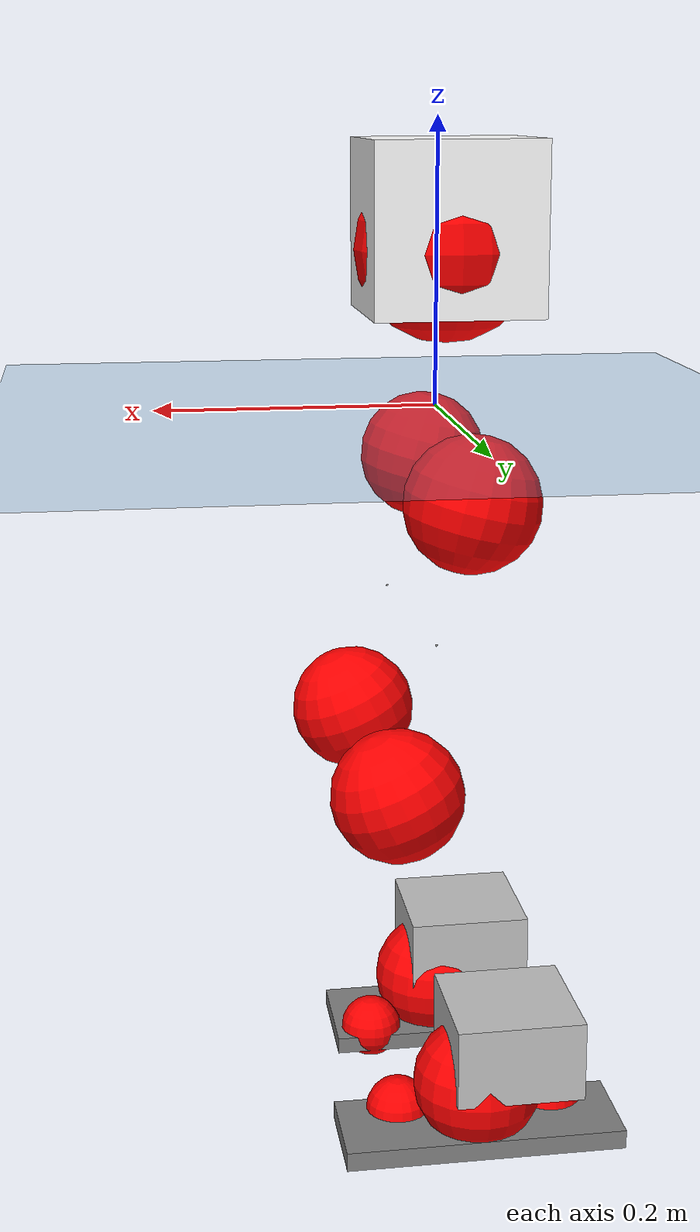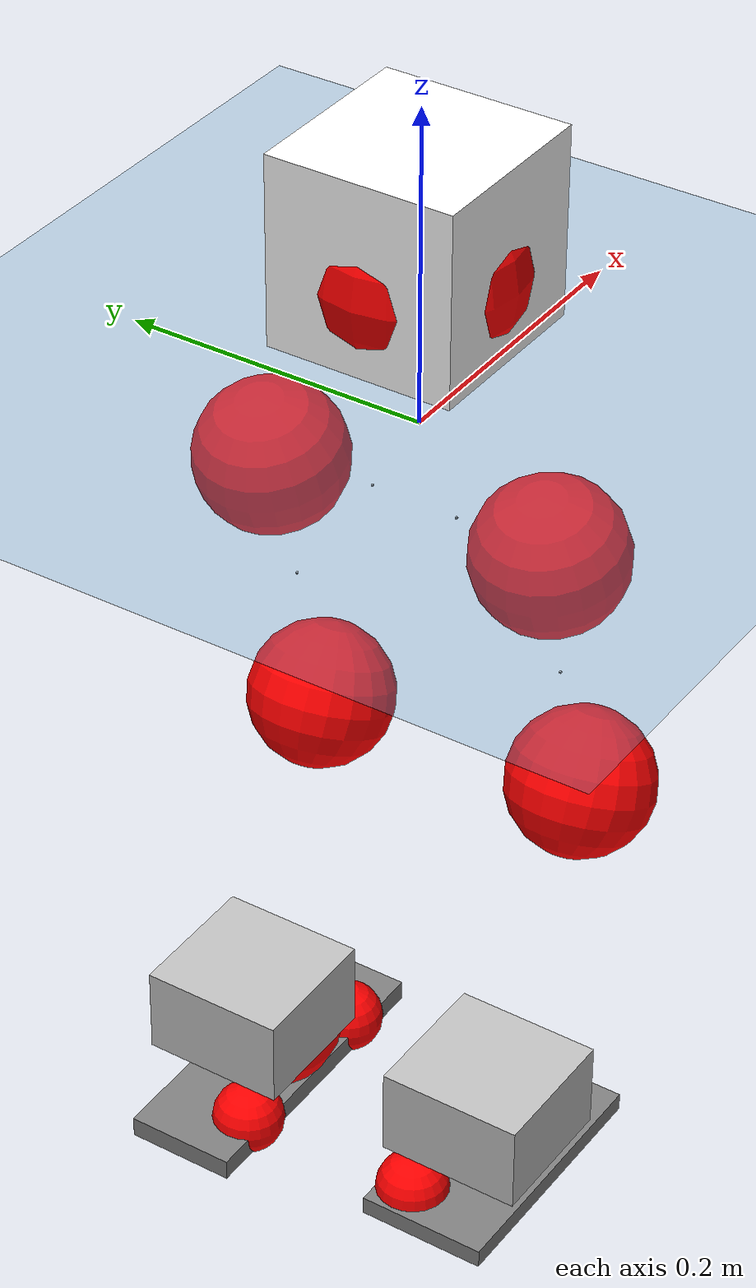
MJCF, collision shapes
<mujoco model="pi_12dof_release_v1">
  <compiler angle="radian" assetdir="assets" balanceinertia="true" inertiafromgeom="false"/>

  <option timestep="0.005" density="1.2" viscosity="2e-05"/>

  <size nkey="1"/>

  <visual>
    <quality shadowsize="8192"/>
    <map shadowclip="0.5"/>
  </visual>

  <default>
    <default class="/">
      <joint armature="0.01" damping="0.01" frictionloss="0.01"/>
      <geom contype="0" conaffinity="0" group="1" solref="-1000 -80"/>
      <site size="0.01 0.005 0.005" group="5"/>
      <general forcelimited="true" biastype="affine" gainprm="20" biasprm="0 -20 -0.5"/>
      <default class="foot">
        <geom size="0.0845 0.036 0.005" type="box" condim="6" group="4" priority="1" friction="0.9 0.2 0.2" solimp="0.015 1 0.005"/>
      </default>
      <default class="reward_collision_sphere">
        <geom group="5" rgba="1 0 0 1"/>
      </default>
    </default>
  </default>

  <asset>
    <texture type="skybox" colorspace="auto" name="//unnamed_texture_0" builtin="gradient" rgb1="0.95 0.95 0.95" rgb2="0.95 0.95 0.95" width="100" height="600"/>
    <texture type="2d" colorspace="auto" name="texplane" builtin="checker" rgb1="0.345 0.575 0.748" rgb2="0.345 0.575 0.748" markrgb="1 1 1" width="512" height="512"/>
    <material name="MatPlane" class="/" texture="texplane" texuniform="true" texrepeat="2 2" specular="0.9"/>
    <mesh name="baselink_1" class="/" file="baselink_1.STL"/>
    <mesh name="r_hip_pitch_link" class="/" file="r_hip_pitch_link.STL"/>
    <mesh name="r_hip_roll_link" class="/" file="r_hip_roll_link.STL"/>
    <mesh name="r_thigh_link" class="/" file="r_thigh_link.STL"/>
    <mesh name="r_calf_link" class="/" file="r_calf_link.STL"/>
    <mesh name="r_ankle_pitch_link" class="/" file="r_ankle_pitch_link.STL"/>
    <mesh name="r_ankle_roll_link" class="/" file="r_ankle_roll_link.STL"/>
    <mesh name="l_hip_pitch_link" class="/" file="l_hip_pitch_link.STL"/>
    <mesh name="l_hip_roll_link" class="/" file="l_hip_roll_link.STL"/>
    <mesh name="l_thigh_link" class="/" file="l_thigh_link.STL"/>
    <mesh name="l_calf_link" class="/" file="l_calf_link.STL"/>
    <mesh name="l_ankle_pitch_link" class="/" file="l_ankle_pitch_link.STL"/>
    <mesh name="l_ankle_roll_link" class="/" file="l_ankle_roll_link.STL"/>
  </asset>

  <worldbody>
    <geom name="floor" class="/" size="100 100 0.125" type="plane" group="0" material="MatPlane"/>
    <light name="toplight_shadow" class="/" pos="0 0 5" dir="0.0990148 0.0990148 -0.990148" type="directional" ambient="0.04 0.04 0.04" diffuse="0.55 0.55 0.55" specular="0.12 0.12 0.12"/>
    <light name="toplight_fill" class="/" pos="0 0 5" dir="0.0990148 0.0990148 -0.990148" type="directional" castshadow="false" ambient="0.04 0.04 0.04" diffuse="0.3 0.3 0.3" specular="0.08 0.08 0.08"/>
    <body name="trunk" pos="-0.00788365 -0.00200938 0.000769806" quat="0.999995 0.00215327 0.0022023 0.00101133">
      <inertial pos="0.00928539 -0.000781281 0.0607065" quat="0.700731 0.00537019 0.00364451 0.713396" mass="4.03296" diaginertia="0.00452975 0.0193773 0.0378284"/>
      <joint name="//unnamed_joint_0" type="free"/>
      <geom name="//unnamed_geom_1" class="/" type="mesh" density="0" rgba="1 1 1 1" mesh="baselink_1"/>
      <geom name="//unnamed_geom_2" class="/" size="0.0596294 0.0596294 0.0596294" pos="0 0 0.124298" type="box" rgba="1 1 1 1"/>
      <geom name="//unnamed_geom_3" class="reward_collision_sphere" size="0.0655923" pos="0 0 0.10876"/>
      <site name="imu" class="/" pos="-0.0105817 -0.0078018 -0.0302891" size="0.0119259"/>
      <camera name="track" class="/" pos="0 -2.33253 0" quat="0.707107 0.707107 0 0" mode="trackcom"/>
      <camera name="ego_camera" class="/" pos="0.0643332 0 0.279669" quat="-0.5 -0.5 0.5 0.5"/>
      <body name="r_hip_pitch_link" pos="0.00150111 -0.0278461 -0.0512315" quat="0.992198 -0.000357076 -0.124675 -1.0965e-05">
        <inertial pos="0.0028226 -0.0609535 -0.00165408" quat="-0.0130007 0.700507 -0.023419 0.713143" mass="0.647983" diaginertia="4.64145e-05 0.00021298 0.000750442"/>
        <joint name="r_hip_pitch_joint" class="/" pos="0 0 0" axis="-0.00330428 -0.99999 -0.00291842" range="-1.72761 1.2893" armature="0.0114158" damping="0" frictionloss="0.00969085"/>
        <geom name="//unnamed_geom_4" class="/" type="mesh" density="0" rgba="0.75294 0.75294 0.75294 1" mesh="r_hip_pitch_link"/>
        <geom name="//unnamed_geom_5" class="/" size="0.000596294 0.000596294 0.000596294" type="box" rgba="0.75294 0.75294 0.75294 1"/>
        <body name="r_hip_roll_link" pos="-0.000842937 -0.0627157 -0.00170499" quat="0.999997 -0.00016116 0.00235118 -0.00114028">
          <inertial pos="-0.00483454 0.0029143 -0.0882594" quat="0.705503 -0.0805758 -0.0819477 0.699327" mass="0.672687" diaginertia="0.000160245 0.000643408 0.00108975"/>
          <joint name="r_hip_roll_joint" class="/" pos="0 0 0" axis="-0.999824 0.0157595 -0.0101713" stiffness="0.0134521" range="-0.144832 0.567038" armature="0.0118656" damping="0.0374236" frictionloss="0.00899045"/>
          <geom name="//unnamed_geom_6" class="/" type="mesh" density="0" rgba="0.75294 0.75294 0.75294 1" mesh="r_hip_roll_link"/>
          <geom name="//unnamed_geom_7" class="/" size="0.000596294 0.000596294 0.000596294" type="box" rgba="0.75294 0.75294 0.75294 1"/>
          <geom name="//unnamed_geom_8" class="reward_collision_sphere" size="0.0477035"/>
          <body name="r_thigh_link" pos="0.00281889 0.00652438 -0.105892" quat="0.999999 -0.000127823 0.000958952 -0.000712">
            <inertial pos="0.00478923 0.00129521 -0.0768147" quat="0.73728 0.675587 0.000120888 -0.000634276" mass="0.188671" diaginertia="5.3392e-05 0.000177261 0.000476833"/>
            <joint name="r_thigh_joint" class="/" pos="0 0 0" axis="0.000245475 0.000669424 -1" stiffness="0.00885275" range="-0.213337 0.550789" armature="0.0129801" damping="0.012659" frictionloss="0.0166726"/>
            <geom name="//unnamed_geom_9" class="/" type="mesh" density="0" rgba="0.75294 0.75294 0.75294 1" mesh="r_thigh_link"/>
            <geom name="//unnamed_geom_10" class="/" size="0.000596294 0.000596294 0.000596294" type="box" rgba="0.75294 0.75294 0.75294 1"/>
            <body name="r_calf_link" pos="0.00290479 -0.00168963 -0.102486" quat="0.947833 -0.00148072 0.31876 0.00134732">
              <inertial pos="-0.00167301 0.00433785 -0.108688" quat="0.999792 0.0140636 0.0120222 -0.00862852" mass="1.40146" diaginertia="0.00175172 0.00773194 0.00166855"/>
              <joint name="r_calf_joint" class="/" pos="0 0 0" axis="0.0135118 -0.999642 -0.0231083" stiffness="0.0260557" range="-1.79801 0.605259" armature="0.0107206" damping="0.0183893" frictionloss="0.0095483"/>
              <geom name="//unnamed_geom_11" class="/" type="mesh" density="0" rgba="0.75294 0.75294 0.75294 1" mesh="r_calf_link"/>
              <geom name="//unnamed_geom_12" class="/" size="0.000596294 0.000596294 0.000596294" type="box" rgba="0.75294 0.75294 0.75294 1"/>
              <geom name="//unnamed_geom_13" class="reward_collision_sphere" size="0.0477035"/>
              <body name="r_ankle_pitch_link" pos="-0.00120777 0.00785546 -0.216494" quat="0.98005 0.000148263 -0.198748 -0.00078879">
                <inertial pos="0.00232112 0.00808739 -0.00241973" quat="0.00429251 0.716569 -0.00221695 0.697499" mass="0.292729" diaginertia="0.000140563 0.000478991 0.00102939"/>
                <joint name="r_ankle_pitch_joint" class="/" pos="0 0 0" axis="0.0327279 -0.999446 -0.00599354" range="-1.30957 0.514109" armature="0.0130019" damping="0.0215281" frictionloss="0.0108487"/>
                <geom name="//unnamed_geom_14" class="/" type="mesh" density="0" rgba="0.75294 0.75294 0.75294 1" mesh="r_ankle_pitch_link"/>
                <geom name="//unnamed_geom_15" class="/" size="0.0465109 0.0477035 0.0298147" type="box" rgba="0.75294 0.75294 0.75294 1"/>
                <body name="r_ankle_roll_link" pos="0.0659344 0.0079414 3.1669e-05" quat="1 -6.04493e-05 -6.83667e-05 7.68858e-05">
                  <inertial pos="-0.0201658 0.00237887 -0.0221858" quat="0.550615 0.456975 0.428871 0.551422" mass="0.860399" diaginertia="0.000528548 0.0022266 0.00267379"/>
                  <joint name="r_ankle_roll_joint" class="/" pos="0 0 0" axis="-0.999347 0.0354977 0.00675928" range="-0.0243006 0.195669" armature="0.00829877" damping="0" frictionloss="0.0118701"/>
                  <geom name="//unnamed_geom_16" class="/" type="mesh" density="0" rgba="0.75294 0.75294 0.75294 1" mesh="r_ankle_roll_link"/>
                  <geom name="//unnamed_geom_17" class="/" type="mesh" rgba="0.75294 0.75294 0.75294 1" mesh="r_ankle_roll_link"/>
                  <geom name="right_foot" class="foot" size="0.0857579 0.0428898 0.00626893" pos="-0.0437466 0 -0.0683636"/>
                  <geom name="//unnamed_geom_19" class="reward_collision_sphere" size="0.0477035" pos="-0.0428888 0 -0.0310744"/>
                  <geom name="//unnamed_geom_20" class="reward_collision_sphere" size="0.0238517" pos="0.0128666 0.0233253 -0.0621488"/>
                  <geom name="//unnamed_geom_21" class="reward_collision_sphere" size="0.0238517" pos="-0.102933 0.0233253 -0.0621488"/>
                  <site name="right_foot" class="foot" pos="-0.0437466 0 -0.0683636" size="0.0119259"/>
                </body>
              </body>
            </body>
          </body>
        </body>
      </body>
      <body name="l_hip_pitch_link" pos="-0.00203566 0.0272197 -0.0474581" quat="0.992207 0.000413726 -0.124601 -0.000614229">
        <inertial pos="0.000982735 0.0564267 0.00336165" quat="-0.0446104 0.723588 0.0596533 0.686201" mass="0.619458" diaginertia="6.2646e-05 0.000228845 0.000861502"/>
        <joint name="l_hip_pitch_joint" class="/" pos="0 0 0" axis="0.0328078 0.999255 -0.0203072" range="-1.23408 1.73873" armature="0.0121556" damping="0.00587394" frictionloss="0.0115156"/>
        <geom name="//unnamed_geom_22" class="/" type="mesh" density="0" rgba="0.75294 0.75294 0.75294 1" mesh="l_hip_pitch_link"/>
        <geom name="//unnamed_geom_23" class="/" size="0.000596294 0.000596294 0.000596294" type="box" rgba="0.75294 0.75294 0.75294 1"/>
        <body name="l_hip_roll_link" pos="-0.000314984 0.0716154 -0.00583108" quat="0.999999 -0.000291768 -0.000996491 -0.000444897">
          <inertial pos="-0.00185794 0.000556446 -0.092353" quat="0.698968 -0.0728443 -0.0784637 0.707094" mass="0.61102" diaginertia="0.000160541 0.000625534 0.00114245"/>
          <joint name="l_hip_roll_joint" class="/" pos="0 0 0" axis="-0.999991 0.00391975 0.00151138" stiffness="0.0406658" range="-0.547234 0.0283131" armature="0.0120084" damping="0.00206995" frictionloss="0.0115787"/>
          <geom name="//unnamed_geom_24" class="/" type="mesh" density="0" rgba="0.75294 0.75294 0.75294 1" mesh="l_hip_roll_link"/>
          <geom name="//unnamed_geom_25" class="/" size="0.000596294 0.000596294 0.000596294" type="box" rgba="0.75294 0.75294 0.75294 1"/>
          <geom name="//unnamed_geom_26" class="reward_collision_sphere" size="0.0477035"/>
          <body name="l_thigh_link" pos="-0.0012596 -0.000743399 -0.101004" quat="1 -0.000280565 0.000807717 0.000251627">
            <inertial pos="-0.000376463 -0.00882927 -0.0730426" quat="0.676654 0.736271 -0.00164323 0.00639792" mass="0.192719" diaginertia="5.971e-05 0.000210858 0.000579562"/>
            <joint name="l_thigh_joint" class="/" pos="0 0 0" axis="0.00269138 0.0015795 -0.999995" range="-0.572258 0.231971" armature="0.0112562" damping="0.0313866" frictionloss="0.0111375"/>
            <geom name="//unnamed_geom_27" class="/" type="mesh" density="0" rgba="0.75294 0.75294 0.75294 1" mesh="l_thigh_link"/>
            <geom name="//unnamed_geom_28" class="/" size="0.000596294 0.000596294 0.000596294" type="box" rgba="0.75294 0.75294 0.75294 1"/>
            <body name="l_calf_link" pos="-0.000462631 0.00108658 -0.111846" quat="0.947457 0.000590629 0.319864 0.00335753">
              <inertial pos="-0.00700842 0.000593195 -0.101174" quat="0.999814 0.0148706 -0.011341 0.00471055" mass="1.36448" diaginertia="0.00160541 0.00735703 0.00152479"/>
              <joint name="l_calf_joint" class="/" pos="0 0 0" axis="-0.00117701 0.999972 0.00743097" range="-0.695072 1.69168" armature="0.0125669" damping="0.0138588" frictionloss="0.0150037"/>
              <geom name="//unnamed_geom_29" class="/" type="mesh" density="0" rgba="0.75294 0.75294 0.75294 1" mesh="l_calf_link"/>
              <geom name="//unnamed_geom_30" class="/" size="0.000596294 0.000596294 0.000596294" type="box" rgba="0.75294 0.75294 0.75294 1"/>
              <geom name="//unnamed_geom_31" class="reward_collision_sphere" size="0.0477035"/>
              <body name="l_ankle_pitch_link" pos="-0.000316344 -0.00104258 -0.210185" quat="0.980071 0.000330001 -0.198648 0.00014708">
                <inertial pos="0.00162647 -0.00136421 0.000516983" quat="-0.000865537 0.707278 0.00094171 0.706934" mass="0.318515" diaginertia="0.00013922 0.000462891 0.00107904"/>
                <joint name="l_ankle_pitch_joint" class="/" pos="0 0 0" axis="-0.00379538 0.999969 -0.00695129" stiffness="0.00761451" range="-0.508476 1.35712" armature="0.0121877" damping="0" frictionloss="0.0116711"/>
                <geom name="//unnamed_geom_32" class="/" type="mesh" density="0" rgba="0.75294 0.75294 0.75294 1" mesh="l_ankle_pitch_link"/>
                <geom name="//unnamed_geom_33" class="/" size="0.0465109 0.0477035 0.0298147" type="box" rgba="0.75294 0.75294 0.75294 1"/>
                <body name="l_ankle_roll_link" pos="0.065811 0.00222102 -0.00197472" quat="0.999999 0.000608441 -0.00115189 -0.000187444">
                  <inertial pos="-0.0170264 0.00147736 -0.023912" quat="0.555466 0.428088 0.439302 0.561438" mass="0.864998" diaginertia="0.000531943 0.00227544 0.00243396"/>
                  <joint name="l_ankle_roll_joint" class="/" pos="0 0 0" axis="-0.999392 -0.034508 -0.0049761" stiffness="0.026214" range="-0.142926 0.141925" armature="0.0114367" damping="0" frictionloss="0.0119209"/>
                  <geom name="//unnamed_geom_34" class="/" type="mesh" density="0" rgba="0.75294 0.75294 0.75294 1" mesh="l_ankle_roll_link"/>
                  <geom name="//unnamed_geom_35" class="/" type="mesh" rgba="0.75294 0.75294 0.75294 1" mesh="l_ankle_roll_link"/>
                  <geom name="left_foot" class="foot" size="0.103072 0.0365634 0.00711326" pos="-0.0437466 0 -0.0683636"/>
                  <geom name="//unnamed_geom_37" class="reward_collision_sphere" size="0.0477035" pos="-0.0428888 0 -0.0310744"/>
                  <geom name="//unnamed_geom_38" class="reward_collision_sphere" size="0.0238517" pos="0.0128666 -0.0233253 -0.0621488"/>
                  <geom name="//unnamed_geom_39" class="reward_collision_sphere" size="0.0238517" pos="-0.102933 -0.0233253 -0.0621488"/>
                  <site name="left_foot" class="foot" pos="-0.0437466 0 -0.0683636" size="0.0119259"/>
                </body>
              </body>
            </body>
          </body>
        </body>
      </body>
    </body>
  </worldbody>

  <contact>
    <pair class="/" geom1="floor" geom2="right_foot" name="//unnamed_contact_1"/>
    <pair class="/" geom1="floor" geom2="left_foot" name="//unnamed_contact_0"/>
  </contact>

  <actuator>
    <general name="r_hip_pitch_joint" class="/" joint="r_hip_pitch_joint" forcerange="-24.3963 24.3963" gainprm="24.871" biasprm="0 -24.871 -0.597923"/>
    <general name="r_hip_roll_joint" class="/" joint="r_hip_roll_joint" forcerange="-23.0021 23.0021" gainprm="24.871" biasprm="0 -24.871 -0.597923"/>
    <general name="r_thigh_joint" class="/" joint="r_thigh_joint" forcerange="-23.1937 23.1937" gainprm="24.871" biasprm="0 -24.871 -0.597923"/>
    <general name="r_calf_joint" class="/" joint="r_calf_joint" forcerange="-17.8899 17.8899" gainprm="24.871" biasprm="0 -24.871 -0.597923"/>
    <general name="r_ankle_pitch_joint" class="/" joint="r_ankle_pitch_joint" forcerange="-26.8782 26.8782" gainprm="24.871" biasprm="0 -24.871 -0.597923"/>
    <general name="r_ankle_roll_joint" class="/" joint="r_ankle_roll_joint" forcerange="-30.7395 30.7395" gainprm="24.871" biasprm="0 -24.871 -0.597923"/>
    <general name="l_hip_pitch_joint" class="/" joint="l_hip_pitch_joint" forcerange="-25.0715 25.0715" gainprm="24.871" biasprm="0 -24.871 -0.597923"/>
    <general name="l_hip_roll_joint" class="/" joint="l_hip_roll_joint" forcerange="-26.3804 26.3804" gainprm="24.871" biasprm="0 -24.871 -0.597923"/>
    <general name="l_thigh_joint" class="/" joint="l_thigh_joint" forcerange="-22.9428 22.9428" gainprm="24.871" biasprm="0 -24.871 -0.597923"/>
    <general name="l_calf_joint" class="/" joint="l_calf_joint" forcerange="-23.7515 23.7515" gainprm="24.871" biasprm="0 -24.871 -0.597923"/>
    <general name="l_ankle_pitch_joint" class="/" joint="l_ankle_pitch_joint" forcerange="-23.8032 23.8032" gainprm="24.871" biasprm="0 -24.871 -0.597923"/>
    <general name="l_ankle_roll_joint" class="/" joint="l_ankle_roll_joint" forcerange="-24.7424 24.7424" gainprm="24.871" biasprm="0 -24.871 -0.597923"/>
  </actuator>

  <sensor>
    <gyro site="imu" name="imu_angular_velocity"/>
    <velocimeter site="imu" name="imu_linear_velocity"/>
    <framelinvel objtype="site" objname="left_foot" name="left_foot_global_linear_velocity"/>
    <framelinvel objtype="site" objname="right_foot" name="right_foot_global_linear_velocity"/>
  </sensor>

  <keyframe>
    <key name="home" qpos="0 0 0.291 1 0 0 0 0.4 0 0 -0.8 0.4 0 -0.4 0 0 0.8 -0.4 0"/>
  </keyframe>
</mujoco>
